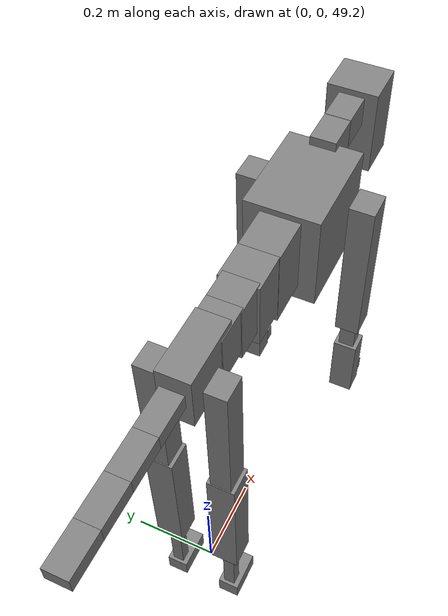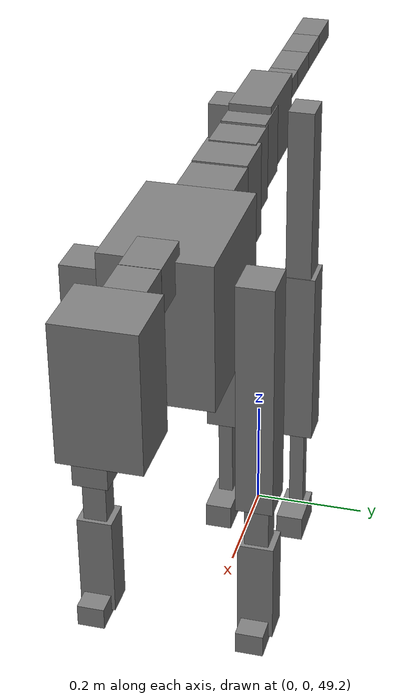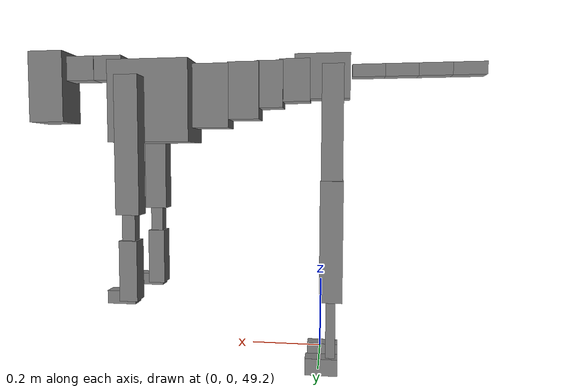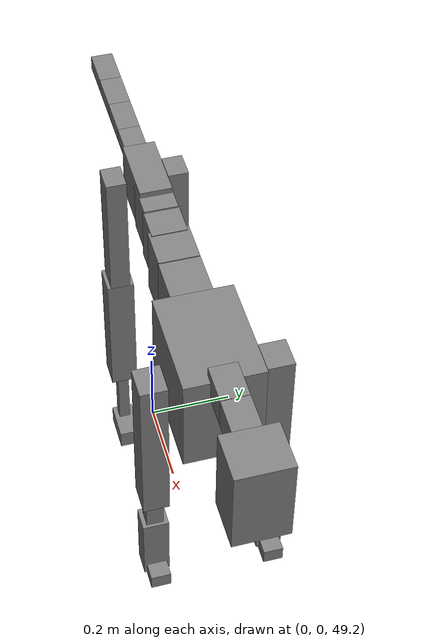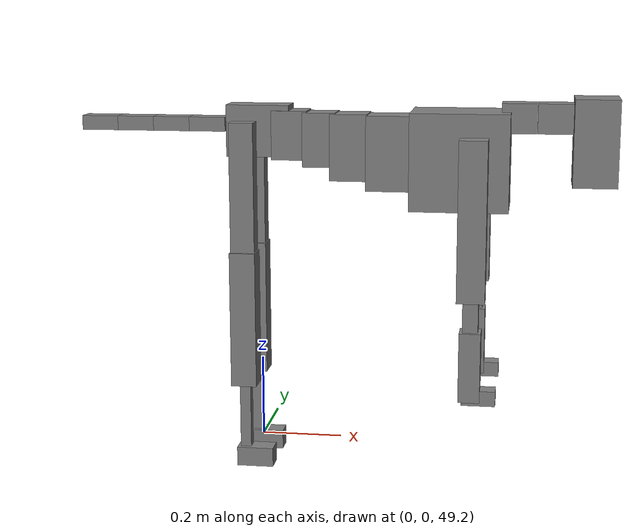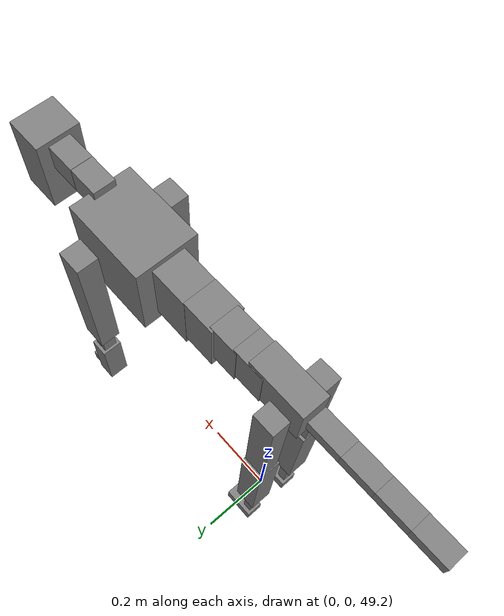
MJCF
<mujoco model="dog">

    <default>
        <joint armature="0.02" stiffness="1" damping="0.2" limited="true"/>
        <geom condim="3" friction="1 0.05 0.05" margin="0.01"/>
        <motor ctrllimited="true" ctrlrange="-1.0 1.0" forcelimited="true" gear="50"/>
    </default>

    <compiler inertiafromgeom="true" angle="radian"/>

    <option timestep="0.016" iterations="50" tolerance="1e-10" solver="Newton" jacobian="dense" cone="pyramidal"/>

    <size nconmax="20000" njmax="60000" nstack="5000000"/>
    <visual>
        <map force="0.1" zfar="30"/>
        <rgba haze="0.15 0.25 0.35 1"/>
        <quality shadowsize="2048"/>
        <global offwidth="800" offheight="800"/>
    </visual>

    <asset>
        <texture type="skybox" builtin="gradient" rgb1="0.3 0.5 0.7" rgb2="0 0 0" width="512" height="512"/>
        <texture name="texplane" type="2d" builtin="checker" rgb1=".2 .3 .4" rgb2=".1 0.15 0.2" width="512" height="512"
                 mark="cross" markrgb=".8 .8 .8"/>
        <texture name="texgeom" type="cube" builtin="flat" mark="cross" width="127" height="1278" rgb1="0.8 0.6 0.4"
                 rgb2="0.8 0.6 0.4" markrgb="1 1 1" random="0.01"/>

        <material name="matplane" reflectance="0.3" texture="texplane" texrepeat="1 1" texuniform="true"/>
        <material name="matgeom" texture="texgeom" texuniform="true" rgba="0.8 0.6 .4 1"/>
    </asset>

    <worldbody>
        <geom name="floor" pos="0 0 0" size="0 0 .25" type="plane" material="matplane" condim="3"/>

        <light directional="false" diffuse=".2 .2 .2" specular="0 0 0" pos="0 0 5" dir="0 0 -1" castshadow="false"/>
        <light mode="targetbodycom" target="torso" directional="false" diffuse=".8 .8 .8" specular="0.3 0.3 0.3"
               pos="0 0 4.0" dir="0 0 -1"/>

        <body name="root" pos="0 0 50">
            <freejoint name="root_1"/>
            <geom type="box" pos="0 0 -0.02" size="0.0774  0.0358  0.063" density="2030"/>

            <body name="spine1" pos="0.054 0 0">
                <joint name="spine1_y" axis="0 1 0" range="0 0.7" limited="true"/>
                <geom type="box" pos="0.02375 0 -0.03" size="0.04375  0.0375  0.05985" density="2030"/>

                <body name="spine2" pos="0.0612 0 0">
                    <joint name="spine2_y" axis="0 1 0" range="-0.15 0.15" limited="true"/>
                    <geom type="box" pos="0.03555  0  -0.04" size="0.04055  0.039  0.06615" density="2030"/>

                    <body name="spine3" pos="0.0730 0 0">
                        <joint name="spine3_y" axis="0 1 0" range="-0.15 0.15" limited="true"/>
                        <geom type="box" pos="0.03555  0  -0.057" size="0.04555  0.0445  0.081" density="2030"/>

                        <body name="spine4" pos="0.0780 0 0">
                            <joint name="spine4_y" axis="0 1 0" range="-0.15 0.15" limited="true"/>
                            <geom type="box" pos="0.05265  0  -0.07" size="0.05265  0.045  0.09135" density="2030"/>

                            <body name="torso" pos="0.1082 0 0">
                                <joint name="torso_y" axis="0 1 0" range="-0.15 0.15" limited="true"/>
                                <geom type="box" pos="0.11925  0  -0.085" size="0.11925  0.085  0.11745"
                                      density="2030"/>

                                <body name="neck1" pos="0.2160  0   0.0180">
                                    <joint name="neck1_y" axis="0 1 0" range="-1.2  -1" limited="true"/>
                                    <geom type="box" pos="0.0423  0  0" size="0.0423  0.03  0.036" density="2325"/>

                                    <body name="neck2" pos="0.0853  0  0">
                                        <joint name="neck2_y" axis="0 1 0" range="0.1  0" limited="true"/>
                                        <geom type="box" pos="0.0423  0  0" size="0.0423  0.03  0.036" density="2325"/>

                                        <body name="head" pos="0.0853  0  0">
                                            <joint name="head_y" axis="0 1 0" range="-0.3  -0.2" limited="true"/>
                                            <geom type="box" pos="0.0531  0  -0.055" size="0.0531  0.06  0.1044"
                                                  density="4030"/>

                                        </body>
                                    </body>
                                </body>

                                <body name="front_shoulder" pos="0.156  0   -0.0480">
                                    <joint name="front_shoulder_y" axis="0 1 0" range="-1 1.5" limited="true"/>
                                    <geom type="box" pos="0 0.13 -0.1664" size="0.0338  0.0289  0.1930" density="1158"/>
                                    <geom type="box" pos="0 -0.13 -0.1664" size="0.0338  0.0289  0.1930"
                                          density="1158"/>

                                    <body name="front_elbow" pos="0  0  -0.3327">
                                        <joint name="front_elbow_y" axis="0 1 0" range="-2 0" limited="true"/>
                                        <geom type="box" pos="0 0.13 -0.0563" size="0.0187  0.0191  0.0563"
                                              density="1081"/>
                                        <geom type="box" pos="0 -0.13 -0.0563" size="0.0187  0.0191  0.0563"
                                              density="1081"/>

                                        <body name="front_wrist" pos="0  0  -0.1125">
                                            <joint name="front_wrist_y" axis="0 1 0" range="-0.2 0" limited="true"/>
                                            <geom type="box" pos="0 0.13 -0.0719" size="0.0258  0.0286  0.0851"
                                                  density="1664"/>
                                            <geom type="box" pos="0 -0.13 -0.0719" size="0.0258  0.0286  0.0851"
                                                  density="1664"/>

                                            <body name="front_finger_end" pos="0  0  -0.1439">
                                                <joint name="front_finger_y" axis="0 1 0" range="-0.4 1"
                                                       limited="true"/>
                                                <geom type="box" pos="0.0223  0.13  -0.0035"
                                                      size="0.0409  0.0223  0.0185" density="1515"/>
                                                <geom type="box" pos="0.0223  -0.13  -0.0035"
                                                      size="0.0409  0.0223  0.0185" density="1515"/>

                                            </body>

                                        </body>
                                    </body>
                                </body>

                            </body>
                        </body>
                    </body>
                </body>
            </body>

            <body name="back_hip" pos="-0.03 0 -0.018">
                <joint name="back_hip_y" axis="0 1 0" range="-1.5 0.3" limited="true"/>
                <geom type="box" pos="0 0.07 -0.1550" size="0.0295  0.0231  0.1778" density="1154"/>
                <geom type="box" pos="0 -0.07 -0.1550" size="0.0295  0.0231  0.1778" density="1154"/>

                <body name="back_knee" pos="0  0  -0.3099">
                    <joint name="back_knee_y" axis="0 1 0" range="0 2.8" limited="true"/>
                    <geom type="box" pos="0 0.07 -0.1528" size="0.0316  0.0312  0.1684" density="1227"/>
                    <geom type="box" pos="0 -0.07 -0.1528" size="0.0316  0.0312  0.1684" density="1227"/>

                    <body name="back_ankle" pos="0  0  -0.3057">
                        <joint name="back_ankle_y" axis="0 1 0" range="-2.2 0" limited="true"/>
                        <geom type="box" pos="0 0.07 -0.0961" size="0.0133  0.0133  0.1073" density="1284"/>
                        <geom type="box" pos="0 -0.07 -0.0961" size="0.0133  0.0133  0.1073" density="1284"/>

                        <body name="back_toe_end" pos="0  0  -0.1921">
                            <joint name="back_toe_y" axis="0 1 0" range="-0.4 1" limited="true"/>
                            <geom type="box" pos="0.0248  0.07  -0.0089" size="0.0454  0.0248  0.0239" density="1515"/>
                            <geom type="box" pos="0.0248  -0.07  -0.0089" size="0.0454  0.0248  0.0239" density="1515"/>

                        </body>
                    </body>
                </body>
            </body>

            <body name="tail1" pos="-0.074 0 -0.006">
                <joint name="tail1_y" axis="0 1 0" range="-0.2 0.2" limited="true"/>
                <geom type="box" pos="-0.0536  0  0" size="0.045  0.025  0.0175" density="1587"/>

                <body name="tail2" pos="-0.09 0 0">
                    <joint name="tail2_y" axis="0 1 0" range="-0.2 0.2" limited="true"/>
                    <geom type="box" pos="-0.0536  0  0" size="0.045  0.025  0.0175" density="1587"/>

                    <body name="tail3" pos="-0.09 0 0">
                        <joint name="tail3_y" axis="0 1 0" range="-0.2 0.2" limited="true"/>
                        <geom type="box" pos="-0.0536  0  0" size="0.045  0.025  0.0175" density="1587"/>

                        <body name="tail4" pos="-0.09 0 0">
                            <joint name="tail4_y" axis="0 1 0" range="-0.2 0.2" limited="true"/>
                            <geom type="box" pos="-0.0536  0  0" size="0.045  0.025  0.0175" density="1587"/>

                        </body>
                    </body>
                </body>
            </body>
        </body>
    </worldbody>

    <actuator>
        <motor joint="spine1_y" forcerange="-150 150     "/>
        <motor joint="spine2_y" forcerange="-150 150     "/>
        <motor joint="spine3_y" forcerange="-150 150     "/>
        <motor joint="spine4_y" forcerange="-150 150     "/>
        <motor joint="torso_y" forcerange="-150 150     "/>
        <motor joint="neck1_y" forcerange="-100 100       "/>
        <motor joint="neck2_y" forcerange="-100 100       "/>
        <motor joint="head_y" forcerange="-150 150       "/>
        <motor joint="front_shoulder_y" forcerange="-173.35 119.30"/>
        <motor joint="front_elbow_y" forcerange="-104.13 134.69"/>
        <motor joint="front_wrist_y" forcerange="-137.64 91.52"/>
        <motor joint="front_finger_y" forcerange="-44.48 34.58"/>
        <motor joint="back_hip_y" forcerange="-264.42 244.14"/>
        <motor joint="back_knee_y" forcerange="-325.83 327.76"/>
        <motor joint="back_angle_y" forcerange="-51.64 60.97"/>
        <motor joint="back_toe_y" forcerange="-29.21 88.99"/>
        <motor joint="tail1_y" forcerange="-50 50     "/>
        <motor joint="tail2_y" forcerange="-50 50     "/>
        <motor joint="tail3_y" forcerange="-50 50     "/>
        <motor joint="tail4_y" forcerange="-50 50     "/>
    </actuator>
</mujoco>
